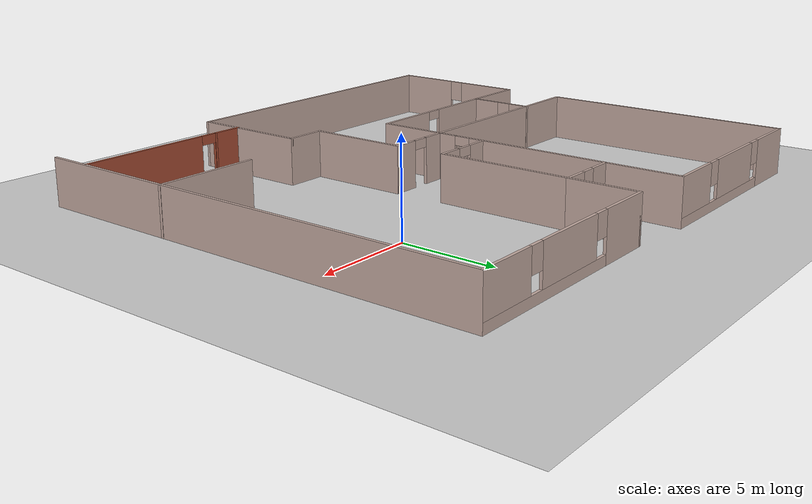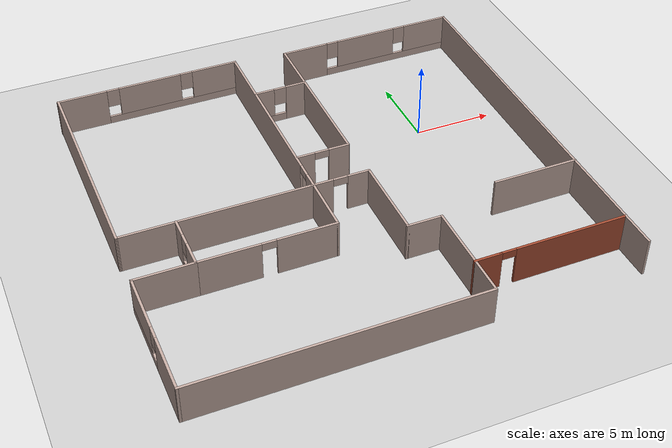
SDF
<sdf version="1.6">
 <world name="default">
  <model name="ground_plane">
   <static>1</static>
   <link name="link">
    <collision name="collision">
     <geometry><plane><normal>0 0 1</normal><size>100 100</size></plane></geometry>
     <surface>
      <contact><collide_bitmask>65535</collide_bitmask></contact>
      <friction><ode><mu>100</mu><mu2>50</mu2></ode></friction>
     </surface>
    </collision>
    <visual name="visual">
     <cast_shadows>0</cast_shadows>
     <geometry><plane><normal>0 0 1</normal><size>100 100</size></plane></geometry>
     <material>
      <script><uri>file://media/materials/scripts/gazebo.material</uri><name>Gazebo/Grey</name></script>
     </material>
    </visual>
   </link>
  </model>
  <model name="ksl_room">
   <pose>-7.675 -3.93877 0 0 -0 0</pose>
   <link name="Wall_17">
    <collision name="Wall_17_Collision">
     <geometry><box><size>14 0.15 2.5</size></box></geometry>
     <pose>0 0 1.25 0 -0 0</pose>
    </collision>
    <visual name="Wall_17_Visual">
     <pose>0 0 1.25 0 -0 0</pose>
     <geometry><box><size>14 0.15 2.5</size></box></geometry>
     <material>
      <script><uri>file://media/materials/scripts/gazebo.material</uri><name>Gazebo/Grey</name></script>
      <ambient>0.760784 0.662745 0.627451 1</ambient>
     </material>
     <meta><layer>0</layer></meta>
    </visual>
    <pose>-13.4754 5.836 0 0 0 -1.5708</pose>
   </link>
   <link name="Wall_18">
    <collision name="Wall_18_Collision">
     <geometry><box><size>11.9733 0.15 2.5</size></box></geometry>
     <pose>0 0 1.25 0 -0 0</pose>
    </collision>
    <visual name="Wall_18_Visual">
     <pose>0 0 1.25 0 -0 0</pose>
     <geometry><box><size>11.9733 0.15 2.5</size></box></geometry>
     <material>
      <script><uri>file://media/materials/scripts/gazebo.material</uri><name>Gazebo/Grey</name></script>
      <ambient>0.760784 0.662745 0.627451 1</ambient>
     </material>
     <meta><layer>0</layer></meta>
    </visual>
    <pose>-7.56394 -1.082 0 0 -0 0.001184</pose>
   </link>
   <link name="Wall_22">
    <pose>-7.57744 12.775 0 0 -0 0</pose>
    <visual name="Wall_22_Visual_0">
     <pose>-4.38866 0 1.25 0 -0 0</pose>
     <geometry><box><size>3.22267 0.15 2.5</size></box></geometry>
     <material>
      <script><uri>file://media/materials/scripts/gazebo.material</uri><name>Gazebo/Grey</name></script>
      <ambient>0.760784 0.662745 0.627451 1</ambient>
     </material>
     <meta><layer>0</layer></meta>
    </visual>
    <collision name="Wall_22_Collision_0">
     <geometry><box><size>3.22267 0.15 2.5</size></box></geometry>
     <pose>-4.38866 0 1.25 0 -0 0</pose>
    </collision>
    <visual name="Wall_22_Visual_1">
     <pose>1.61133 0 0.25 0 -0 0</pose>
     <geometry><box><size>8.77733 0.15 0.5</size></box></geometry>
     <material>
      <script><uri>file://media/materials/scripts/gazebo.material</uri><name>Gazebo/Grey</name></script>
      <ambient>0.760784 0.662745 0.627451 1</ambient>
     </material>
     <meta><layer>0</layer></meta>
    </visual>
    <collision name="Wall_22_Collision_1">
     <geometry><box><size>8.77733 0.15 0.5</size></box></geometry>
     <pose>1.61133 0 0.25 0 -0 0</pose>
    </collision>
    <visual name="Wall_22_Visual_2">
     <pose>0.07765 0 1.5 0 -0 0</pose>
     <geometry><box><size>4.10996 0.15 2</size></box></geometry>
     <material>
      <script><uri>file://media/materials/scripts/gazebo.material</uri><name>Gazebo/Grey</name></script>
      <ambient>0.760784 0.662745 0.627451 1</ambient>
     </material>
     <meta><layer>0</layer></meta>
    </visual>
    <collision name="Wall_22_Collision_2">
     <geometry><box><size>4.10996 0.15 2</size></box></geometry>
     <pose>0.07765 0 1.5 0 -0 0</pose>
    </collision>
    <visual name="Wall_22_Visual_3">
     <pose>4.46631 0 1.5 0 -0 0</pose>
     <geometry><box><size>3.06737 0.15 2</size></box></geometry>
     <material>
      <script><uri>file://media/materials/scripts/gazebo.material</uri><name>Gazebo/Grey</name></script>
      <ambient>0.760784 0.662745 0.627451 1</ambient>
     </material>
     <meta><layer>0</layer></meta>
    </visual>
    <collision name="Wall_22_Collision_3">
     <geometry><box><size>3.06737 0.15 2</size></box></geometry>
     <pose>4.46631 0 1.5 0 -0 0</pose>
    </collision>
    <visual name="Wall_22_Visual_4">
     <pose>-2.37733 0 1.9 0 -0 0</pose>
     <geometry><box><size>0.8 0.15 1.2</size></box></geometry>
     <material>
      <script><uri>file://media/materials/scripts/gazebo.material</uri><name>Gazebo/Grey</name></script>
      <ambient>0.760784 0.662745 0.627451 1</ambient>
     </material>
     <meta><layer>0</layer></meta>
    </visual>
    <collision name="Wall_22_Collision_4">
     <geometry><box><size>0.8 0.15 1.2</size></box></geometry>
     <pose>-2.37733 0 1.9 0 -0 0</pose>
    </collision>
    <visual name="Wall_22_Visual_5">
     <pose>2.53263 0 1.9 0 -0 0</pose>
     <geometry><box><size>0.8 0.15 1.2</size></box></geometry>
     <material>
      <script><uri>file://media/materials/scripts/gazebo.material</uri><name>Gazebo/Grey</name></script>
      <ambient>0.760784 0.662745 0.627451 1</ambient>
     </material>
     <meta><layer>0</layer></meta>
    </visual>
    <collision name="Wall_22_Collision_5">
     <geometry><box><size>0.8 0.15 1.2</size></box></geometry>
     <pose>2.53263 0 1.9 0 -0 0</pose>
    </collision>
   </link>
   <link name="Wall_23">
    <pose>-1.65244 5.85 0 0 0 -1.5708</pose>
    <visual name="Wall_23_Visual_0">
     <pose>-1.00938 0 1.25 0 -0 0</pose>
     <geometry><box><size>11.9812 0.15 2.5</size></box></geometry>
     <material>
      <script><uri>file://media/materials/scripts/gazebo.material</uri><name>Gazebo/Grey</name></script>
      <ambient>0.760784 0.662745 0.627451 1</ambient>
     </material>
     <meta><layer>0</layer></meta>
    </visual>
    <collision name="Wall_23_Collision_0">
     <geometry><box><size>11.9812 0.15 2.5</size></box></geometry>
     <pose>-1.00938 0 1.25 0 -0 0</pose>
    </collision>
    <visual name="Wall_23_Visual_1">
     <pose>6.44062 0 1.25 0 -0 0</pose>
     <geometry><box><size>1.11876 0.15 2.5</size></box></geometry>
     <material>
      <script><uri>file://media/materials/scripts/gazebo.material</uri><name>Gazebo/Grey</name></script>
      <ambient>0.760784 0.662745 0.627451 1</ambient>
     </material>
     <meta><layer>0</layer></meta>
    </visual>
    <collision name="Wall_23_Collision_1">
     <geometry><box><size>1.11876 0.15 2.5</size></box></geometry>
     <pose>6.44062 0 1.25 0 -0 0</pose>
    </collision>
    <visual name="Wall_23_Visual_2">
     <pose>5.43124 0 2.25 0 -0 0</pose>
     <geometry><box><size>0.9 0.15 0.5</size></box></geometry>
     <material>
      <script><uri>file://media/materials/scripts/gazebo.material</uri><name>Gazebo/Grey</name></script>
      <ambient>0.760784 0.662745 0.627451 1</ambient>
     </material>
     <meta><layer>0</layer></meta>
    </visual>
    <collision name="Wall_23_Collision_2">
     <geometry><box><size>0.9 0.15 0.5</size></box></geometry>
     <pose>5.43124 0 2.25 0 -0 0</pose>
    </collision>
   </link>
   <link name="Wall_25">
    <pose>-10.0024 -2.875 0 0 0 -1.5708</pose>
    <visual name="Wall_25_Visual_0">
     <pose>-1.25876 0 1.25 0 -0 0</pose>
     <geometry><box><size>1.23249 0.15 2.5</size></box></geometry>
     <material>
      <script><uri>file://media/materials/scripts/gazebo.material</uri><name>Gazebo/Grey</name></script>
      <ambient>0.760784 0.662745 0.627451 1</ambient>
     </material>
     <meta><layer>0</layer></meta>
    </visual>
    <collision name="Wall_25_Collision_0">
     <geometry><box><size>1.23249 0.15 2.5</size></box></geometry>
     <pose>-1.25876 0 1.25 0 -0 0</pose>
    </collision>
    <visual name="Wall_25_Visual_1">
     <pose>0.616244 0 0.25 0 -0 0</pose>
     <geometry><box><size>2.51751 0.15 0.5</size></box></geometry>
     <material>
      <script><uri>file://media/materials/scripts/gazebo.material</uri><name>Gazebo/Grey</name></script>
      <ambient>0.760784 0.662745 0.627451 1</ambient>
     </material>
     <meta><layer>0</layer></meta>
    </visual>
    <collision name="Wall_25_Collision_1">
     <geometry><box><size>2.51751 0.15 0.5</size></box></geometry>
     <pose>0.616244 0 0.25 0 -0 0</pose>
    </collision>
    <visual name="Wall_25_Visual_2">
     <pose>1.01624 0 1.5 0 -0 0</pose>
     <geometry><box><size>1.71751 0.15 2</size></box></geometry>
     <material>
      <script><uri>file://media/materials/scripts/gazebo.material</uri><name>Gazebo/Grey</name></script>
      <ambient>0.760784 0.662745 0.627451 1</ambient>
     </material>
     <meta><layer>0</layer></meta>
    </visual>
    <collision name="Wall_25_Collision_2">
     <geometry><box><size>1.71751 0.15 2</size></box></geometry>
     <pose>1.01624 0 1.5 0 -0 0</pose>
    </collision>
    <visual name="Wall_25_Visual_3">
     <pose>-0.242512 0 1.9 0 -0 0</pose>
     <geometry><box><size>0.8 0.15 1.2</size></box></geometry>
     <material>
      <script><uri>file://media/materials/scripts/gazebo.material</uri><name>Gazebo/Grey</name></script>
      <ambient>0.760784 0.662745 0.627451 1</ambient>
     </material>
     <meta><layer>0</layer></meta>
    </visual>
    <collision name="Wall_25_Collision_3">
     <geometry><box><size>0.8 0.15 1.2</size></box></geometry>
     <pose>-0.242512 0 1.9 0 -0 0</pose>
    </collision>
   </link>
   <link name="Wall_26">
    <pose>-5.82744 -4.675 0 0 -0 0</pose>
    <visual name="Wall_26_Visual_0">
     <pose>-2.3202 0 1.25 0 -0 0</pose>
     <geometry><box><size>3.85961 0.15 2.5</size></box></geometry>
     <material>
      <script><uri>file://media/materials/scripts/gazebo.material</uri><name>Gazebo/Grey</name></script>
      <ambient>0.760784 0.662745 0.627451 1</ambient>
     </material>
     <meta><layer>0</layer></meta>
    </visual>
    <collision name="Wall_26_Collision_0">
     <geometry><box><size>3.85961 0.15 2.5</size></box></geometry>
     <pose>-2.3202 0 1.25 0 -0 0</pose>
    </collision>
    <visual name="Wall_26_Visual_1">
     <pose>2.3798 0 1.25 0 -0 0</pose>
     <geometry><box><size>3.74039 0.15 2.5</size></box></geometry>
     <material>
      <script><uri>file://media/materials/scripts/gazebo.material</uri><name>Gazebo/Grey</name></script>
      <ambient>0.760784 0.662745 0.627451 1</ambient>
     </material>
     <meta><layer>0</layer></meta>
    </visual>
    <collision name="Wall_26_Collision_1">
     <geometry><box><size>3.74039 0.15 2.5</size></box></geometry>
     <pose>2.3798 0 1.25 0 -0 0</pose>
    </collision>
    <visual name="Wall_26_Visual_2">
     <pose>0.059605 0 2.25 0 -0 0</pose>
     <geometry><box><size>0.9 0.15 0.5</size></box></geometry>
     <material>
      <script><uri>file://media/materials/scripts/gazebo.material</uri><name>Gazebo/Grey</name></script>
      <ambient>0.760784 0.662745 0.627451 1</ambient>
     </material>
     <meta><layer>0</layer></meta>
    </visual>
    <collision name="Wall_26_Collision_2">
     <geometry><box><size>0.9 0.15 0.5</size></box></geometry>
     <pose>0.059605 0 2.25 0 -0 0</pose>
    </collision>
   </link>
   <link name="Wall_27">
    <collision name="Wall_27_Collision">
     <geometry><box><size>3.75 0.15 2.5</size></box></geometry>
     <pose>0 0 1.25 0 -0 0</pose>
    </collision>
    <visual name="Wall_27_Visual">
     <pose>0 0 1.25 0 -0 0</pose>
     <geometry><box><size>3.75 0.15 2.5</size></box></geometry>
     <material>
      <script><uri>file://media/materials/scripts/gazebo.material</uri><name>Gazebo/Grey</name></script>
      <ambient>0.760784 0.662745 0.627451 1</ambient>
     </material>
     <meta><layer>0</layer></meta>
    </visual>
    <pose>-1.65244 -2.875 0 0 -0 1.5708</pose>
   </link>
   <link name="Wall_31">
    <pose>0.067219 -1.075 0 0 -0 0</pose>
    <visual name="Wall_31_Visual_0">
     <pose>-1.17954 0 1.25 0 -0 0</pose>
     <geometry><box><size>1.41114 0.15 2.5</size></box></geometry>
     <material>
      <script><uri>file://media/materials/scripts/gazebo.material</uri><name>Gazebo/Grey</name></script>
      <ambient>0.760784 0.662745 0.627451 1</ambient>
     </material>
     <meta><layer>0</layer></meta>
    </visual>
    <collision name="Wall_31_Collision_0">
     <geometry><box><size>1.41114 0.15 2.5</size></box></geometry>
     <pose>-1.17954 0 1.25 0 -0 0</pose>
    </collision>
    <visual name="Wall_31_Visual_1">
     <pose>1.15557 0 1.25 0 -0 0</pose>
     <geometry><box><size>1.45908 0.15 2.5</size></box></geometry>
     <material>
      <script><uri>file://media/materials/scripts/gazebo.material</uri><name>Gazebo/Grey</name></script>
      <ambient>0.760784 0.662745 0.627451 1</ambient>
     </material>
     <meta><layer>0</layer></meta>
    </visual>
    <collision name="Wall_31_Collision_1">
     <geometry><box><size>1.45908 0.15 2.5</size></box></geometry>
     <pose>1.15557 0 1.25 0 -0 0</pose>
    </collision>
    <visual name="Wall_31_Visual_2">
     <pose>-0.023972 0 2.25 0 -0 0</pose>
     <geometry><box><size>0.9 0.15 0.5</size></box></geometry>
     <material>
      <script><uri>file://media/materials/scripts/gazebo.material</uri><name>Gazebo/Grey</name></script>
      <ambient>0.760784 0.662745 0.627451 1</ambient>
     </material>
     <meta><layer>0</layer></meta>
    </visual>
    <collision name="Wall_31_Collision_2">
     <geometry><box><size>0.9 0.15 0.5</size></box></geometry>
     <pose>-0.023972 0 2.25 0 -0 0</pose>
    </collision>
   </link>
   <link name="Wall_32">
    <collision name="Wall_32_Collision">
     <geometry><box><size>5.5 0.15 2.5</size></box></geometry>
     <pose>0 0 1.25 0 -0 0</pose>
    </collision>
    <visual name="Wall_32_Visual">
     <pose>0 0 1.25 0 -0 0</pose>
     <geometry><box><size>5.5 0.15 2.5</size></box></geometry>
     <material>
      <script><uri>file://media/materials/scripts/gazebo.material</uri><name>Gazebo/Grey</name></script>
      <ambient>0.760784 0.662745 0.627451 1</ambient>
     </material>
     <meta><layer>0</layer></meta>
    </visual>
    <pose>1.87733 -3.75 0 0 0 -1.5708</pose>
   </link>
   <link name="Wall_33">
    <collision name="Wall_33_Collision">
     <geometry><box><size>2.29046 0.15 2.5</size></box></geometry>
     <pose>0 0 1.25 0 -0 0</pose>
    </collision>
    <visual name="Wall_33_Visual">
     <pose>0 0 1.25 0 -0 0</pose>
     <geometry><box><size>2.29046 0.15 2.5</size></box></geometry>
     <material>
      <script><uri>file://media/materials/scripts/gazebo.material</uri><name>Gazebo/Grey</name></script>
      <ambient>0.760784 0.662745 0.627451 1</ambient>
     </material>
     <meta><layer>0</layer></meta>
    </visual>
    <pose>2.92733 -6.425 0 0 -0 0</pose>
   </link>
   <link name="Wall_34">
    <collision name="Wall_34_Collision">
     <geometry><box><size>6.5 0.15 2.5</size></box></geometry>
     <pose>0 0 1.25 0 -0 0</pose>
    </collision>
    <visual name="Wall_34_Visual">
     <pose>0 0 1.25 0 -0 0</pose>
     <geometry><box><size>6.5 0.15 2.5</size></box></geometry>
     <material>
      <script><uri>file://media/materials/scripts/gazebo.material</uri><name>Gazebo/Grey</name></script>
      <ambient>0.760784 0.662745 0.627451 1</ambient>
     </material>
     <meta><layer>0</layer></meta>
    </visual>
    <pose>3.99756 -9.6 0 0 0 -1.5708</pose>
   </link>
   <link name="Wall_35">
    <collision name="Wall_35_Collision">
     <geometry><box><size>17.75 0.15 2.5</size></box></geometry>
     <pose>0 0 1.25 0 -0 0</pose>
    </collision>
    <visual name="Wall_35_Visual">
     <pose>0 0 1.25 0 -0 0</pose>
     <geometry><box><size>17.75 0.15 2.5</size></box></geometry>
     <material>
      <script><uri>file://media/materials/scripts/gazebo.material</uri><name>Gazebo/Grey</name></script>
      <ambient>0.760784 0.662745 0.627451 1</ambient>
     </material>
     <meta><layer>0</layer></meta>
    </visual>
    <pose>-4.80244 -12.775 0 0 -0 3.14159</pose>
   </link>
   <link name="Wall_36">
    <pose>-13.6024 -8.725 0 0 -0 1.5708</pose>
    <visual name="Wall_36_Visual_0">
     <pose>-2.27357 0 1.25 0 -0 0</pose>
     <geometry><box><size>3.70287 0.15 2.5</size></box></geometry>
     <material>
      <script><uri>file://media/materials/scripts/gazebo.material</uri><name>Gazebo/Grey</name></script>
      <ambient>0.760784 0.662745 0.627451 1</ambient>
     </material>
     <meta><layer>0</layer></meta>
    </visual>
    <collision name="Wall_36_Collision_0">
     <geometry><box><size>3.70287 0.15 2.5</size></box></geometry>
     <pose>-2.27357 0 1.25 0 -0 0</pose>
    </collision>
    <visual name="Wall_36_Visual_1">
     <pose>1.85143 0 0.25 0 -0 0</pose>
     <geometry><box><size>4.54713 0.15 0.5</size></box></geometry>
     <material>
      <script><uri>file://media/materials/scripts/gazebo.material</uri><name>Gazebo/Grey</name></script>
      <ambient>0.760784 0.662745 0.627451 1</ambient>
     </material>
     <meta><layer>0</layer></meta>
    </visual>
    <collision name="Wall_36_Collision_1">
     <geometry><box><size>4.54713 0.15 0.5</size></box></geometry>
     <pose>1.85143 0 0.25 0 -0 0</pose>
    </collision>
    <visual name="Wall_36_Visual_2">
     <pose>2.25143 0 1.5 0 -0 0</pose>
     <geometry><box><size>3.74713 0.15 2</size></box></geometry>
     <material>
      <script><uri>file://media/materials/scripts/gazebo.material</uri><name>Gazebo/Grey</name></script>
      <ambient>0.760784 0.662745 0.627451 1</ambient>
     </material>
     <meta><layer>0</layer></meta>
    </visual>
    <collision name="Wall_36_Collision_2">
     <geometry><box><size>3.74713 0.15 2</size></box></geometry>
     <pose>2.25143 0 1.5 0 -0 0</pose>
    </collision>
    <visual name="Wall_36_Visual_3">
     <pose>-0.022129 0 1.9 0 -0 0</pose>
     <geometry><box><size>0.8 0.15 1.2</size></box></geometry>
     <material>
      <script><uri>file://media/materials/scripts/gazebo.material</uri><name>Gazebo/Grey</name></script>
      <ambient>0.760784 0.662745 0.627451 1</ambient>
     </material>
     <meta><layer>0</layer></meta>
    </visual>
    <collision name="Wall_36_Collision_3">
     <geometry><box><size>0.8 0.15 1.2</size></box></geometry>
     <pose>-0.022129 0 1.9 0 -0 0</pose>
    </collision>
   </link>
   <link name="Wall_37">
    <collision name="Wall_37_Collision">
     <geometry><box><size>3.75 0.15 2.5</size></box></geometry>
     <pose>0 0 1.25 0 -0 0</pose>
    </collision>
    <visual name="Wall_37_Visual">
     <pose>0 0 1.25 0 -0 0</pose>
     <geometry><box><size>3.75 0.15 2.5</size></box></geometry>
     <material>
      <script><uri>file://media/materials/scripts/gazebo.material</uri><name>Gazebo/Grey</name></script>
      <ambient>0.760784 0.662745 0.627451 1</ambient>
     </material>
     <meta><layer>0</layer></meta>
    </visual>
    <pose>-11.8024 -4.675 0 0 -0 0</pose>
   </link>
   <link name="Wall_41">
    <pose>0.063923 1.68558 0 0 -0 0</pose>
    <visual name="Wall_41_Visual_0">
     <pose>-1.13698 0 1.25 0 -0 0</pose>
     <geometry><box><size>1.22605 0.15 2.5</size></box></geometry>
     <material>
      <script><uri>file://media/materials/scripts/gazebo.material</uri><name>Gazebo/Grey</name></script>
      <ambient>0.760784 0.662745 0.627451 1</ambient>
     </material>
     <meta><layer>0</layer></meta>
    </visual>
    <collision name="Wall_41_Collision_0">
     <geometry><box><size>1.22605 0.15 2.5</size></box></geometry>
     <pose>-1.13698 0 1.25 0 -0 0</pose>
    </collision>
    <visual name="Wall_41_Visual_1">
     <pose>1.06303 0 1.25 0 -0 0</pose>
     <geometry><box><size>1.37395 0.15 2.5</size></box></geometry>
     <material>
      <script><uri>file://media/materials/scripts/gazebo.material</uri><name>Gazebo/Grey</name></script>
      <ambient>0.760784 0.662745 0.627451 1</ambient>
     </material>
     <meta><layer>0</layer></meta>
    </visual>
    <collision name="Wall_41_Collision_1">
     <geometry><box><size>1.37395 0.15 2.5</size></box></geometry>
     <pose>1.06303 0 1.25 0 -0 0</pose>
    </collision>
    <visual name="Wall_41_Visual_2">
     <pose>-0.073951 0 2.25 0 -0 0</pose>
     <geometry><box><size>0.9 0.15 0.5</size></box></geometry>
     <material>
      <script><uri>file://media/materials/scripts/gazebo.material</uri><name>Gazebo/Grey</name></script>
      <ambient>0.760784 0.662745 0.627451 1</ambient>
     </material>
     <meta><layer>0</layer></meta>
    </visual>
    <collision name="Wall_41_Collision_2">
     <geometry><box><size>0.9 0.15 0.5</size></box></geometry>
     <pose>-0.073951 0 2.25 0 -0 0</pose>
    </collision>
   </link>
   <link name="Wall_42">
    <collision name="Wall_42_Collision">
     <geometry><box><size>7.25 0.15 2.5</size></box></geometry>
     <pose>0 0 1.25 0 -0 0</pose>
    </collision>
    <visual name="Wall_42_Visual">
     <pose>0 0 1.25 0 -0 0</pose>
     <geometry><box><size>7.25 0.15 2.5</size></box></geometry>
     <material>
      <script><uri>file://media/materials/scripts/gazebo.material</uri><name>Gazebo/Grey</name></script>
      <ambient>0.760784 0.662745 0.627451 1</ambient>
     </material>
     <meta><layer>0</layer></meta>
    </visual>
    <pose>1.73892 5.23558 0 0 -0 1.5708</pose>
   </link>
   <link name="Wall_43">
    <pose>0.063923 8.78558 0 0 -0 3.14159</pose>
    <visual name="Wall_43_Visual_0">
     <pose>-1.04439 0 1.25 0 -0 0</pose>
     <geometry><box><size>1.41121 0.15 2.5</size></box></geometry>
     <material>
      <script><uri>file://media/materials/scripts/gazebo.material</uri><name>Gazebo/Grey</name></script>
      <ambient>0.760784 0.662745 0.627451 1</ambient>
     </material>
     <meta><layer>0</layer></meta>
    </visual>
    <collision name="Wall_43_Collision_0">
     <geometry><box><size>1.41121 0.15 2.5</size></box></geometry>
     <pose>-1.04439 0 1.25 0 -0 0</pose>
    </collision>
    <visual name="Wall_43_Visual_1">
     <pose>0.705606 0 0.25 0 -0 0</pose>
     <geometry><box><size>2.08879 0.15 0.5</size></box></geometry>
     <material>
      <script><uri>file://media/materials/scripts/gazebo.material</uri><name>Gazebo/Grey</name></script>
      <ambient>0.760784 0.662745 0.627451 1</ambient>
     </material>
     <meta><layer>0</layer></meta>
    </visual>
    <collision name="Wall_43_Collision_1">
     <geometry><box><size>2.08879 0.15 0.5</size></box></geometry>
     <pose>0.705606 0 0.25 0 -0 0</pose>
    </collision>
    <visual name="Wall_43_Visual_2">
     <pose>1.10561 0 1.5 0 -0 0</pose>
     <geometry><box><size>1.28879 0.15 2</size></box></geometry>
     <material>
      <script><uri>file://media/materials/scripts/gazebo.material</uri><name>Gazebo/Grey</name></script>
      <ambient>0.760784 0.662745 0.627451 1</ambient>
     </material>
     <meta><layer>0</layer></meta>
    </visual>
    <collision name="Wall_43_Collision_2">
     <geometry><box><size>1.28879 0.15 2</size></box></geometry>
     <pose>1.10561 0 1.5 0 -0 0</pose>
    </collision>
    <visual name="Wall_43_Visual_3">
     <pose>0.061212 0 1.9 0 -0 0</pose>
     <geometry><box><size>0.8 0.15 1.2</size></box></geometry>
     <material>
      <script><uri>file://media/materials/scripts/gazebo.material</uri><name>Gazebo/Grey</name></script>
      <ambient>0.760784 0.662745 0.627451 1</ambient>
     </material>
     <meta><layer>0</layer></meta>
    </visual>
    <collision name="Wall_43_Collision_3">
     <geometry><box><size>0.8 0.15 1.2</size></box></geometry>
     <pose>0.061212 0 1.9 0 -0 0</pose>
    </collision>
   </link>
   <link name="Wall_45">
    <collision name="Wall_45_Collision">
     <geometry><box><size>3.75 0.15 2.5</size></box></geometry>
     <pose>0 0 1.25 0 -0 0</pose>
    </collision>
    <visual name="Wall_45_Visual">
     <pose>0 0 1.25 0 -0 0</pose>
     <geometry><box><size>3.75 0.15 2.5</size></box></geometry>
     <material>
      <script><uri>file://media/materials/scripts/gazebo.material</uri><name>Gazebo/Grey</name></script>
      <ambient>0.760784 0.662745 0.627451 1</ambient>
     </material>
     <meta><layer>0</layer></meta>
    </visual>
    <pose>1.73892 10.5856 0 0 -0 1.5708</pose>
   </link>
   <link name="Wall_46">
    <pose>7.66392 12.3856 0 0 -0 0</pose>
    <visual name="Wall_46_Visual_0">
     <pose>-4.44872 0 1.25 0 -0 0</pose>
     <geometry><box><size>3.10256 0.15 2.5</size></box></geometry>
     <material>
      <script><uri>file://media/materials/scripts/gazebo.material</uri><name>Gazebo/Grey</name></script>
      <ambient>0.760784 0.662745 0.627451 1</ambient>
     </material>
     <meta><layer>0</layer></meta>
    </visual>
    <collision name="Wall_46_Collision_0">
     <geometry><box><size>3.10256 0.15 2.5</size></box></geometry>
     <pose>-4.44872 0 1.25 0 -0 0</pose>
    </collision>
    <visual name="Wall_46_Visual_1">
     <pose>1.55128 0 0.25 0 -0 0</pose>
     <geometry><box><size>8.89744 0.15 0.5</size></box></geometry>
     <material>
      <script><uri>file://media/materials/scripts/gazebo.material</uri><name>Gazebo/Grey</name></script>
      <ambient>0.760784 0.662745 0.627451 1</ambient>
     </material>
     <meta><layer>0</layer></meta>
    </visual>
    <collision name="Wall_46_Collision_1">
     <geometry><box><size>8.89744 0.15 0.5</size></box></geometry>
     <pose>1.55128 0 0.25 0 -0 0</pose>
    </collision>
    <visual name="Wall_46_Visual_2">
     <pose>-0.024665 0 1.5 0 -0 0</pose>
     <geometry><box><size>4.14554 0.15 2</size></box></geometry>
     <material>
      <script><uri>file://media/materials/scripts/gazebo.material</uri><name>Gazebo/Grey</name></script>
      <ambient>0.760784 0.662745 0.627451 1</ambient>
     </material>
     <meta><layer>0</layer></meta>
    </visual>
    <collision name="Wall_46_Collision_2">
     <geometry><box><size>4.14554 0.15 2</size></box></geometry>
     <pose>-0.024665 0 1.5 0 -0 0</pose>
    </collision>
    <visual name="Wall_46_Visual_3">
     <pose>4.42405 0 1.5 0 -0 0</pose>
     <geometry><box><size>3.1519 0.15 2</size></box></geometry>
     <material>
      <script><uri>file://media/materials/scripts/gazebo.material</uri><name>Gazebo/Grey</name></script>
      <ambient>0.760784 0.662745 0.627451 1</ambient>
     </material>
     <meta><layer>0</layer></meta>
    </visual>
    <collision name="Wall_46_Collision_3">
     <geometry><box><size>3.1519 0.15 2</size></box></geometry>
     <pose>4.42405 0 1.5 0 -0 0</pose>
    </collision>
    <visual name="Wall_46_Visual_4">
     <pose>-2.49744 0 1.9 0 -0 0</pose>
     <geometry><box><size>0.8 0.15 1.2</size></box></geometry>
     <material>
      <script><uri>file://media/materials/scripts/gazebo.material</uri><name>Gazebo/Grey</name></script>
      <ambient>0.760784 0.662745 0.627451 1</ambient>
     </material>
     <meta><layer>0</layer></meta>
    </visual>
    <collision name="Wall_46_Collision_4">
     <geometry><box><size>0.8 0.15 1.2</size></box></geometry>
     <pose>-2.49744 0 1.9 0 -0 0</pose>
    </collision>
    <visual name="Wall_46_Visual_5">
     <pose>2.4481 0 1.9 0 -0 0</pose>
     <geometry><box><size>0.8 0.15 1.2</size></box></geometry>
     <material>
      <script><uri>file://media/materials/scripts/gazebo.material</uri><name>Gazebo/Grey</name></script>
      <ambient>0.760784 0.662745 0.627451 1</ambient>
     </material>
     <meta><layer>0</layer></meta>
    </visual>
    <collision name="Wall_46_Collision_5">
     <geometry><box><size>0.8 0.15 1.2</size></box></geometry>
     <pose>2.4481 0 1.9 0 -0 0</pose>
    </collision>
   </link>
   <link name="Wall_47">
    <collision name="Wall_47_Collision">
     <geometry><box><size>25.25 0.15 2.5</size></box></geometry>
     <pose>0 0 1.25 0 -0 0</pose>
    </collision>
    <visual name="Wall_47_Visual">
     <pose>0 0 1.25 0 -0 0</pose>
     <geometry><box><size>25.25 0.15 2.5</size></box></geometry>
     <material>
      <script><uri>file://media/materials/scripts/gazebo.material</uri><name>Gazebo/Grey</name></script>
      <ambient>0.760784 0.662745 0.627451 1</ambient>
     </material>
     <meta><layer>0</layer></meta>
    </visual>
    <pose>13.5889 -0.164423 0 0 0 -1.5708</pose>
   </link>
   <link name="Wall_49">
    <collision name="Wall_49_Collision">
     <geometry><box><size>1.75 0.15 2.5</size></box></geometry>
     <pose>0 0 1.25 0 -0 0</pose>
    </collision>
    <visual name="Wall_49_Visual">
     <pose>0 0 1.25 0 -0 0</pose>
     <geometry><box><size>1.75 0.15 2.5</size></box></geometry>
     <material>
      <script><uri>file://media/materials/scripts/gazebo.material</uri><name>Gazebo/Bricks</name></script>
      <ambient>1 1 1 1</ambient>
     </material>
     <meta><layer>0</layer></meta>
    </visual>
    <pose>4.77111 -10.4501 0 0 -0 0</pose>
   </link>
   <link name="Wall_51">
    <pose>9.55987 -10.4501 0 0 -0 3.14159</pose>
    <visual name="Wall_51_Visual_0">
     <pose>-0.511723 0 1.25 0 -0 0</pose>
     <geometry><box><size>7.10408 0.15 2.5</size></box></geometry>
     <material>
      <script><uri>file://media/materials/scripts/gazebo.material</uri><name>Gazebo/Bricks</name></script>
      <ambient>1 1 1 1</ambient>
     </material>
     <meta><layer>0</layer></meta>
    </visual>
    <collision name="Wall_51_Collision_0">
     <geometry><box><size>7.10408 0.15 2.5</size></box></geometry>
     <pose>-0.511723 0 1.25 0 -0 0</pose>
    </collision>
    <visual name="Wall_51_Visual_1">
     <pose>4.00204 0 1.25 0 -0 0</pose>
     <geometry><box><size>0.123447 0.15 2.5</size></box></geometry>
     <material>
      <script><uri>file://media/materials/scripts/gazebo.material</uri><name>Gazebo/Bricks</name></script>
      <ambient>1 1 1 1</ambient>
     </material>
     <meta><layer>0</layer></meta>
    </visual>
    <collision name="Wall_51_Collision_1">
     <geometry><box><size>0.123447 0.15 2.5</size></box></geometry>
     <pose>4.00204 0 1.25 0 -0 0</pose>
    </collision>
    <visual name="Wall_51_Visual_2">
     <pose>3.49032 0 2.25 0 -0 0</pose>
     <geometry><box><size>0.9 0.15 0.5</size></box></geometry>
     <material>
      <script><uri>file://media/materials/scripts/gazebo.material</uri><name>Gazebo/Bricks</name></script>
      <ambient>1 1 1 1</ambient>
     </material>
     <meta><layer>0</layer></meta>
    </visual>
    <collision name="Wall_51_Collision_2">
     <geometry><box><size>0.9 0.15 0.5</size></box></geometry>
     <pose>3.49032 0 2.25 0 -0 0</pose>
    </collision>
   </link>
   <link name="Wall_53">
    <collision name="Wall_53_Collision">
     <geometry><box><size>5.5 0.15 2.5</size></box></geometry>
     <pose>0 0 1.25 0 -0 0</pose>
    </collision>
    <visual name="Wall_53_Visual">
     <pose>0 0 1.25 0 -0 0</pose>
     <geometry><box><size>5.5 0.15 2.5</size></box></geometry>
     <material>
      <script><uri>file://media/materials/scripts/gazebo.material</uri><name>Gazebo/Grey</name></script>
      <ambient>0.760784 0.662745 0.627451 1</ambient>
     </material>
     <meta><layer>0</layer></meta>
    </visual>
    <pose>10.9274 -4.96187 0 0 -0 3.14159</pose>
   </link>
   <static>1</static>
  </model>
 </world>
</sdf>
